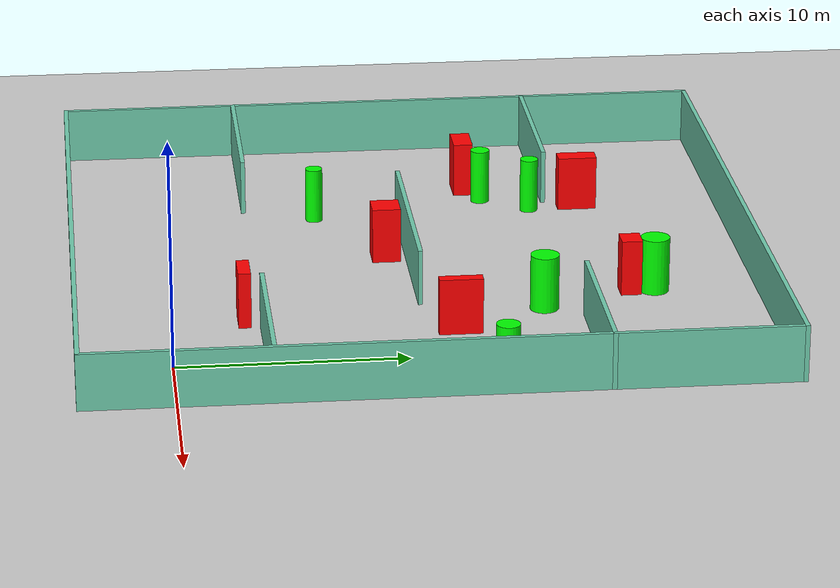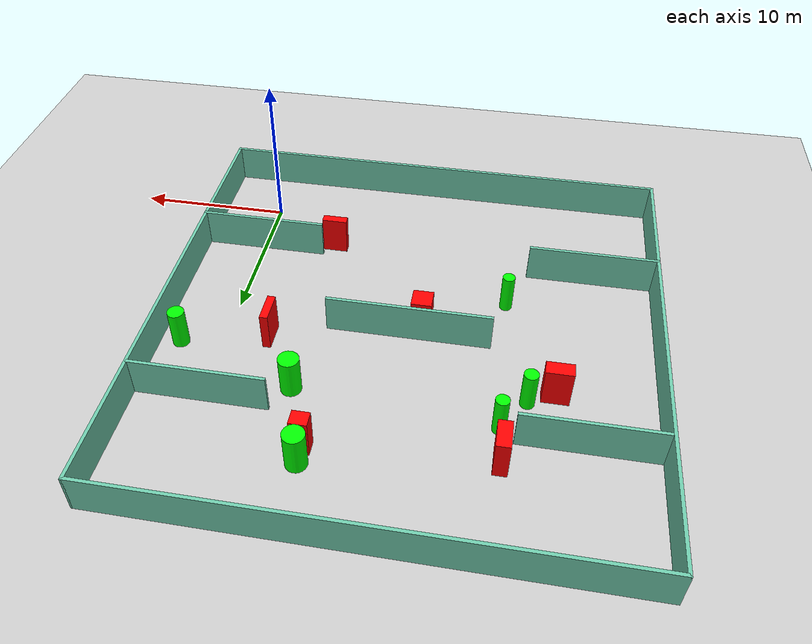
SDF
<sdf version="1.7">
 <world name="default">
  <light name="sun" type="directional">
   <pose>0 0 10 0 -0 0</pose>
   <diffuse>0.8 0.8 0.8 1</diffuse>
   <specular>0.2 0.2 0.2 1</specular>
   <attenuation>
    <range>1000</range>
    <constant>0.9</constant>
    <linear>0.01</linear>
    <quadratic>0.001</quadratic>
   </attenuation>
   <direction>-0.5 0.1 -0.9</direction>
   <spot><inner_angle>0</inner_angle><outer_angle>0</outer_angle><falloff>0</falloff></spot>
  </light>
  <model name="ground_plane">
   <static>1</static>
   <link name="link">
    <collision name="collision">
     <geometry><plane><normal>0 0 1</normal><size>100 100</size></plane></geometry>
     <surface>
      <contact><collide_bitmask>65535</collide_bitmask></contact>
      <friction><ode><mu>100</mu><mu2>50</mu2></ode></friction>
     </surface>
    </collision>
    <visual name="visual">
     <cast_shadows>0</cast_shadows>
     <geometry><plane><normal>0 0 1</normal><size>100 100</size></plane></geometry>
     <material>
      <script><uri>file://media/materials/scripts/gazebo.material</uri><name>Gazebo/Grey</name></script>
     </material>
    </visual>
   </link>
  </model>
  <gravity>0 0 -9.8</gravity>
  <magnetic_field>6e-06 2.3e-05 -4.2e-05</magnetic_field>
  <atmosphere type="adiabatic"/>
  <physics type="ode">
   <max_step_size>0.001</max_step_size>
   <real_time_factor>1</real_time_factor>
   <real_time_update_rate>1000</real_time_update_rate>
  </physics>
  <scene><ambient>0.4 0.4 0.4 1</ambient><background>0.7 0.7 0.7 1</background><shadows>1</shadows></scene>
  <spherical_coordinates>
   <surface_model>EARTH_WGS84</surface_model>
   <latitude_deg>0</latitude_deg>
   <longitude_deg>0</longitude_deg>
   <elevation>0</elevation>
   <heading_deg>0</heading_deg>
  </spherical_coordinates>
  <model name="my_base_walls">
   <link name="Wall_10">
    <collision name="Wall_10_Collision">
     <geometry><box><size>8.2 0.2 2.5</size></box></geometry>
     <pose>0 0 1.25 0 -0 0</pose>
    </collision>
    <visual name="Wall_10_Visual">
     <pose>0 0 1.25 0 -0 0</pose>
     <geometry><box><size>8.2 0.2 2.5</size></box></geometry>
     <material>
      <script><uri>file://media/materials/scripts/gazebo.material</uri><name>Gazebo/Grey</name></script>
      <ambient>0.435294 0.796078 0.67451 1</ambient>
     </material>
     <meta><layer>0</layer></meta>
    </visual>
    <pose>-11 -7 0 0 -0 0</pose>
   </link>
   <link name="Wall_12">
    <collision name="Wall_12_Collision">
     <geometry><box><size>8.2 0.2 2.5</size></box></geometry>
     <pose>0 0 1.25 0 -0 0</pose>
    </collision>
    <visual name="Wall_12_Visual">
     <pose>0 0 1.25 0 -0 0</pose>
     <geometry><box><size>8.2 0.2 2.5</size></box></geometry>
     <material>
      <script><uri>file://media/materials/scripts/gazebo.material</uri><name>Gazebo/Grey</name></script>
      <ambient>0.435294 0.796078 0.67451 1</ambient>
     </material>
     <meta><layer>0</layer></meta>
    </visual>
    <pose>-11 7 0 0 -0 0</pose>
   </link>
   <link name="Wall_14">
    <collision name="Wall_14_Collision">
     <geometry><box><size>8.2 0.2 2.5</size></box></geometry>
     <pose>0 0 1.25 0 -0 0</pose>
    </collision>
    <visual name="Wall_14_Visual">
     <pose>0 0 1.25 0 -0 0</pose>
     <geometry><box><size>8.2 0.2 2.5</size></box></geometry>
     <material>
      <script><uri>file://media/materials/scripts/gazebo.material</uri><name>Gazebo/Grey</name></script>
      <ambient>0.435294 0.796078 0.67451 1</ambient>
     </material>
     <meta><layer>0</layer></meta>
    </visual>
    <pose>11 7 0 0 -0 3.14159</pose>
   </link>
   <link name="Wall_16">
    <collision name="Wall_16_Collision">
     <geometry><box><size>10.2 0.2 2.5</size></box></geometry>
     <pose>0 0 1.25 0 -0 0</pose>
    </collision>
    <visual name="Wall_16_Visual">
     <pose>0 0 1.25 0 -0 0</pose>
     <geometry><box><size>10.2 0.2 2.5</size></box></geometry>
     <material>
      <script><uri>file://media/materials/scripts/gazebo.material</uri><name>Gazebo/Grey</name></script>
      <ambient>0.435294 0.796078 0.67451 1</ambient>
     </material>
     <meta><layer>0</layer></meta>
    </visual>
    <pose>0 0 0 0 -0 3.14159</pose>
   </link>
   <link name="Wall_2">
    <collision name="Wall_2_Collision">
     <geometry><box><size>30.2 0.2 2.5</size></box></geometry>
     <pose>0 0 1.25 0 -0 0</pose>
    </collision>
    <visual name="Wall_2_Visual">
     <pose>0 0 1.25 0 -0 0</pose>
     <geometry><box><size>30.2 0.2 2.5</size></box></geometry>
     <material>
      <script><uri>file://media/materials/scripts/gazebo.material</uri><name>Gazebo/Grey</name></script>
      <ambient>0.435294 0.796078 0.67451 1</ambient>
     </material>
     <meta><layer>0</layer></meta>
    </visual>
    <pose>0 -15 0 0 -0 3.14159</pose>
   </link>
   <link name="Wall_3">
    <collision name="Wall_3_Collision">
     <geometry><box><size>30.2 0.2 2.5</size></box></geometry>
     <pose>0 0 1.25 0 -0 0</pose>
    </collision>
    <visual name="Wall_3_Visual">
     <pose>0 0 1.25 0 -0 0</pose>
     <geometry><box><size>30.2 0.2 2.5</size></box></geometry>
     <material>
      <script><uri>file://media/materials/scripts/gazebo.material</uri><name>Gazebo/Grey</name></script>
      <ambient>0.435294 0.796078 0.67451 1</ambient>
     </material>
     <meta><layer>0</layer></meta>
    </visual>
    <pose>-15 0 0 0 -0 1.5708</pose>
   </link>
   <link name="Wall_4">
    <collision name="Wall_4_Collision">
     <geometry><box><size>30.2 0.2 2.5</size></box></geometry>
     <pose>0 0 1.25 0 -0 0</pose>
    </collision>
    <visual name="Wall_4_Visual">
     <pose>0 0 1.25 0 -0 0</pose>
     <geometry><box><size>30.2 0.2 2.5</size></box></geometry>
     <material>
      <script><uri>file://media/materials/scripts/gazebo.material</uri><name>Gazebo/Grey</name></script>
      <ambient>0.435294 0.796078 0.67451 1</ambient>
     </material>
     <meta><layer>0</layer></meta>
    </visual>
    <pose>0 15 0 0 -0 0</pose>
   </link>
   <link name="Wall_6">
    <collision name="Wall_6_Collision">
     <geometry><box><size>30.2 0.2 2.5</size></box></geometry>
     <pose>0 0 1.25 0 -0 0</pose>
    </collision>
    <visual name="Wall_6_Visual">
     <pose>0 0 1.25 0 -0 0</pose>
     <geometry><box><size>30.2 0.2 2.5</size></box></geometry>
     <material>
      <script><uri>file://media/materials/scripts/gazebo.material</uri><name>Gazebo/Grey</name></script>
      <ambient>0.435294 0.796078 0.67451 1</ambient>
     </material>
     <meta><layer>0</layer></meta>
    </visual>
    <pose>15 0 0 0 -0 1.5708</pose>
   </link>
   <link name="Wall_8">
    <collision name="Wall_8_Collision">
     <geometry><box><size>8.2 0.2 2.5</size></box></geometry>
     <pose>0 0 1.25 0 -0 0</pose>
    </collision>
    <visual name="Wall_8_Visual">
     <pose>0 0 1.25 0 -0 0</pose>
     <geometry><box><size>8.2 0.2 2.5</size></box></geometry>
     <material>
      <script><uri>file://media/materials/scripts/gazebo.material</uri><name>Gazebo/Grey</name></script>
      <ambient>0.435294 0.796078 0.67451 1</ambient>
     </material>
     <meta><layer>0</layer></meta>
    </visual>
    <pose>11 -7 0 0 -0 3.14159</pose>
   </link>
   <static>1</static>
   <pose>-11 11 0 0 -0 0</pose>
  </model>
  <model name="cylinder1">
   <static>1</static>
   <link name="link">
    <inertial>
     <mass>1</mass>
     <inertia><ixx>0.5</ixx><ixy>0</ixy><ixz>0</ixz><iyy>0.5</iyy><iyz>0</iyz><izz>1</izz></inertia>
    </inertial>
    <collision name="collision">
     <geometry><cylinder><radius>0.43380555441235</radius><length>2.5</length></cylinder></geometry>
    </collision>
    <visual name="visual">
     <geometry><cylinder><radius>0.43380555441235</radius><length>2.5</length></cylinder></geometry>
     <material>
      <ambient>0 1 0 1</ambient>
      <diffuse>0 1 0 1</diffuse>
      <specular>0.1 0.1 0.1 1</specular>
      <emissive>0 0 0 0</emissive>
     </material>
    </visual>
   </link>
   <pose>-18.492467595714665 15.103200994464107 1.25 0 0 0</pose>
  </model>
  <model name="cylinder2">
   <static>1</static>
   <link name="link">
    <inertial>
     <mass>1</mass>
     <inertia><ixx>0.5</ixx><ixy>0</ixy><ixz>0</ixz><iyy>0.5</iyy><iyz>0</iyz><izz>1</izz></inertia>
    </inertial>
    <collision name="collision">
     <geometry><cylinder><radius>0.38968042078405174</radius><length>2.5</length></cylinder></geometry>
    </collision>
    <visual name="visual">
     <geometry><cylinder><radius>0.38968042078405174</radius><length>2.5</length></cylinder></geometry>
     <material>
      <ambient>0 1 0 1</ambient>
      <diffuse>0 1 0 1</diffuse>
      <specular>0.1 0.1 0.1 1</specular>
      <emissive>0 0 0 0</emissive>
     </material>
    </visual>
   </link>
   <pose>-16.745533105486523 7.199505053151098 1.25 0 0 0</pose>
  </model>
  <model name="cylinder3">
   <static>1</static>
   <link name="link">
    <inertial>
     <mass>1</mass>
     <inertia><ixx>0.5</ixx><ixy>0</ixy><ixz>0</ixz><iyy>0.5</iyy><iyz>0</iyz><izz>1</izz></inertia>
    </inertial>
    <collision name="collision">
     <geometry><cylinder><radius>0.6296279666844888</radius><length>2.5</length></cylinder></geometry>
    </collision>
    <visual name="visual">
     <geometry><cylinder><radius>0.6296279666844888</radius><length>2.5</length></cylinder></geometry>
     <material>
      <ambient>0 1 0 1</ambient>
      <diffuse>0 1 0 1</diffuse>
      <specular>0.1 0.1 0.1 1</specular>
      <emissive>0 0 0 0</emissive>
     </material>
    </visual>
   </link>
   <pose>-4.96485254941738 16.31439584840511 1.25 0 0 0</pose>
  </model>
  <model name="cylinder4">
   <static>1</static>
   <link name="link">
    <inertial>
     <mass>1</mass>
     <inertia><ixx>0.5</ixx><ixy>0</ixy><ixz>0</ixz><iyy>0.5</iyy><iyz>0</iyz><izz>1</izz></inertia>
    </inertial>
    <collision name="collision">
     <geometry><cylinder><radius>0.4076956794482939</radius><length>2.5</length></cylinder></geometry>
    </collision>
    <visual name="visual">
     <geometry><cylinder><radius>0.4076956794482939</radius><length>2.5</length></cylinder></geometry>
     <material>
      <ambient>0 1 0 1</ambient>
      <diffuse>0 1 0 1</diffuse>
      <specular>0.1 0.1 0.1 1</specular>
      <emissive>0 0 0 0</emissive>
     </material>
    </visual>
   </link>
   <pose>-17.0490620742017 17.219090787378068 1.25 0 0 0</pose>
  </model>
  <model name="cylinder5">
   <static>1</static>
   <link name="link">
    <inertial>
     <mass>1</mass>
     <inertia><ixx>0.5</ixx><ixy>0</ixy><ixz>0</ixz><iyy>0.5</iyy><iyz>0</iyz><izz>1</izz></inertia>
    </inertial>
    <collision name="collision">
     <geometry><cylinder><radius>0.6426755424262769</radius><length>2.5</length></cylinder></geometry>
    </collision>
    <visual name="visual">
     <geometry><cylinder><radius>0.6426755424262769</radius><length>2.5</length></cylinder></geometry>
     <material>
      <ambient>0 1 0 1</ambient>
      <diffuse>0 1 0 1</diffuse>
      <specular>0.1 0.1 0.1 1</specular>
      <emissive>0 0 0 0</emissive>
     </material>
    </visual>
   </link>
   <pose>-6.555584253290403 21.39964004097307 1.25 0 0 0</pose>
  </model>
  <model name="cylinder6">
   <static>1</static>
   <link name="link">
    <inertial>
     <mass>1</mass>
     <inertia><ixx>0.5</ixx><ixy>0</ixy><ixz>0</ixz><iyy>0.5</iyy><iyz>0</iyz><izz>1</izz></inertia>
    </inertial>
    <collision name="collision">
     <geometry><cylinder><radius>0.515733141232642</radius><length>2.5</length></cylinder></geometry>
    </collision>
    <visual name="visual">
     <geometry><cylinder><radius>0.515733141232642</radius><length>2.5</length></cylinder></geometry>
     <material>
      <ambient>0 1 0 1</ambient>
      <diffuse>0 1 0 1</diffuse>
      <specular>0.1 0.1 0.1 1</specular>
      <emissive>0 0 0 0</emissive>
     </material>
    </visual>
   </link>
   <pose>2.6162066827354096 13.758044467877937 1.25 0 0 0</pose>
  </model>
  <model name="box1">
   <static>1</static>
   <link name="link">
    <inertial>
     <mass>1</mass>
     <inertia><ixx>0.083</ixx><ixy>0</ixy><ixz>0</ixz><iyy>0.083</iyy><iyz>0</iyz><izz>0.083</izz></inertia>
    </inertial>
    <collision name="collision">
     <geometry><box><size>0.8313832159540425 1.7712581306733415 2.5</size></box></geometry>
    </collision>
    <visual name="visual">
     <geometry><box><size>0.8313832159540425 1.7712581306733415 2.5</size></box></geometry>
     <material>
      <ambient>1 0 0 1</ambient>
      <diffuse>1 0 0 1</diffuse>
      <specular>0.1 0.1 0.1 1</specular>
      <emissive>0 0 0 0</emissive>
     </material>
    </visual>
    <sensor name="my_contact" type="contact">
     <contact><collision>box_collision</collision><topic>__default_topic__</topic></contact>
    </sensor>
   </link>
   <pose>-17.307475920375076 19.461939169361415 1.25 0 0 0</pose>
  </model>
  <model name="box2">
   <static>1</static>
   <link name="link">
    <inertial>
     <mass>1</mass>
     <inertia><ixx>0.083</ixx><ixy>0</ixy><ixz>0</ixz><iyy>0.083</iyy><iyz>0</iyz><izz>0.083</izz></inertia>
    </inertial>
    <collision name="collision">
     <geometry><box><size>0.5031112251130269 1.892996982381724 2.5</size></box></geometry>
    </collision>
    <visual name="visual">
     <geometry><box><size>0.5031112251130269 1.892996982381724 2.5</size></box></geometry>
     <material>
      <ambient>1 0 0 1</ambient>
      <diffuse>1 0 0 1</diffuse>
      <specular>0.1 0.1 0.1 1</specular>
      <emissive>0 0 0 0</emissive>
     </material>
    </visual>
    <sensor name="my_contact" type="contact">
     <contact><collision>box_collision</collision><topic>__default_topic__</topic></contact>
    </sensor>
   </link>
   <pose>-2.659007419943965 12.393423097212185 1.25 0 0 0</pose>
  </model>
  <model name="box3">
   <static>1</static>
   <link name="link">
    <inertial>
     <mass>1</mass>
     <inertia><ixx>0.083</ixx><ixy>0</ixy><ixz>0</ixz><iyy>0.083</iyy><iyz>0</iyz><izz>0.083</izz></inertia>
    </inertial>
    <collision name="collision">
     <geometry><box><size>1.036618319688834 0.9112700635432152 2.5</size></box></geometry>
    </collision>
    <visual name="visual">
     <geometry><box><size>1.036618319688834 0.9112700635432152 2.5</size></box></geometry>
     <material>
      <ambient>1 0 0 1</ambient>
      <diffuse>1 0 0 1</diffuse>
      <specular>0.1 0.1 0.1 1</specular>
      <emissive>0 0 0 0</emissive>
     </material>
    </visual>
    <sensor name="my_contact" type="contact">
     <contact><collision>box_collision</collision><topic>__default_topic__</topic></contact>
    </sensor>
   </link>
   <pose>-6.600402417295655 20.314424752097754 1.25 0 0 0</pose>
  </model>
  <model name="box4">
   <static>1</static>
   <link name="link">
    <inertial>
     <mass>1</mass>
     <inertia><ixx>0.083</ixx><ixy>0</ixy><ixz>0</ixz><iyy>0.083</iyy><iyz>0</iyz><izz>0.083</izz></inertia>
    </inertial>
    <collision name="collision">
     <geometry><box><size>1.2615629792001226 1.2668868216561544 2.5</size></box></geometry>
    </collision>
    <visual name="visual">
     <geometry><box><size>1.2615629792001226 1.2668868216561544 2.5</size></box></geometry>
     <material>
      <ambient>1 0 0 1</ambient>
      <diffuse>1 0 0 1</diffuse>
      <specular>0.1 0.1 0.1 1</specular>
      <emissive>0 0 0 0</emissive>
     </material>
    </visual>
    <sensor name="my_contact" type="contact">
     <contact><collision>box_collision</collision><topic>__default_topic__</topic></contact>
    </sensor>
   </link>
   <pose>-11.69800952140064 10.019417774015125 1.25 0 0 0</pose>
  </model>
  <model name="box5">
   <static>1</static>
   <link name="link">
    <inertial>
     <mass>1</mass>
     <inertia><ixx>0.083</ixx><ixy>0</ixy><ixz>0</ixz><iyy>0.083</iyy><iyz>0</iyz><izz>0.083</izz></inertia>
    </inertial>
    <collision name="collision">
     <geometry><box><size>1.6186157236382006 0.5514831689604669 2.5</size></box></geometry>
    </collision>
    <visual name="visual">
     <geometry><box><size>1.6186157236382006 0.5514831689604669 2.5</size></box></geometry>
     <material>
      <ambient>1 0 0 1</ambient>
      <diffuse>1 0 0 1</diffuse>
      <specular>0.1 0.1 0.1 1</specular>
      <emissive>0 0 0 0</emissive>
     </material>
    </visual>
    <sensor name="my_contact" type="contact">
     <contact><collision>box_collision</collision><topic>__default_topic__</topic></contact>
    </sensor>
   </link>
   <pose>-4.815516969579006 3.251884520108563 1.25 0 0 0</pose>
  </model>
  <model name="box6">
   <static>1</static>
   <link name="link">
    <inertial>
     <mass>1</mass>
     <inertia><ixx>0.083</ixx><ixy>0</ixy><ixz>0</ixz><iyy>0.083</iyy><iyz>0</iyz><izz>0.083</izz></inertia>
    </inertial>
    <collision name="collision">
     <geometry><box><size>1.6284498097916915 0.8896216503029095 2.5</size></box></geometry>
    </collision>
    <visual name="visual">
     <geometry><box><size>1.6284498097916915 0.8896216503029095 2.5</size></box></geometry>
     <material>
      <ambient>1 0 0 1</ambient>
      <diffuse>1 0 0 1</diffuse>
      <specular>0.1 0.1 0.1 1</specular>
      <emissive>0 0 0 0</emissive>
     </material>
    </visual>
    <sensor name="my_contact" type="contact">
     <contact><collision>box_collision</collision><topic>__default_topic__</topic></contact>
    </sensor>
   </link>
   <pose>-20.052821841559776 14.401890637932226 1.25 0 0 0</pose>
  </model>
 </world>
</sdf>
